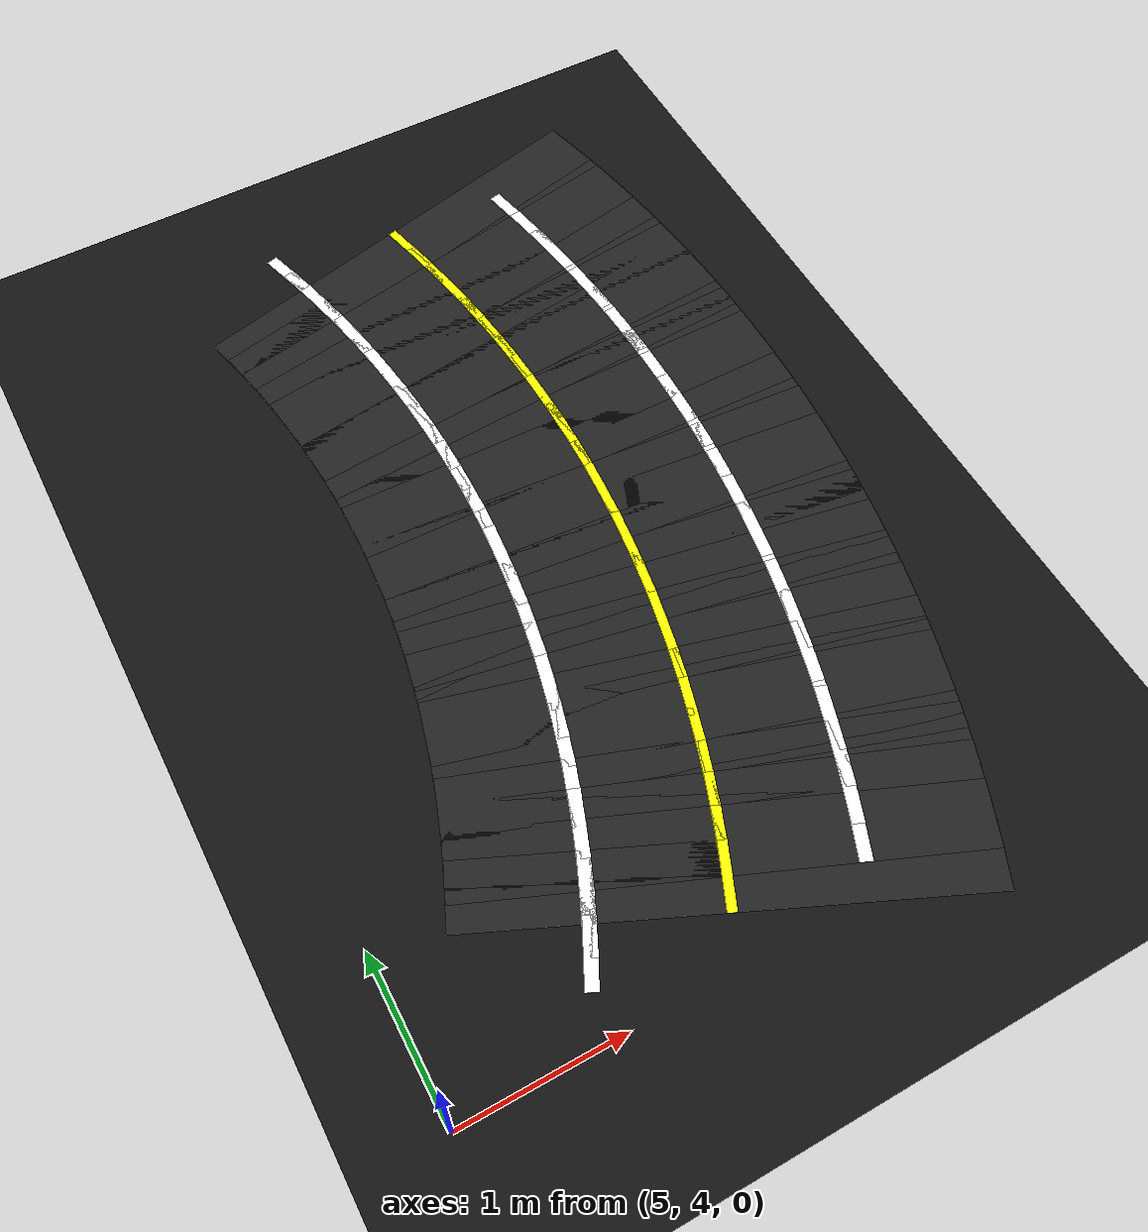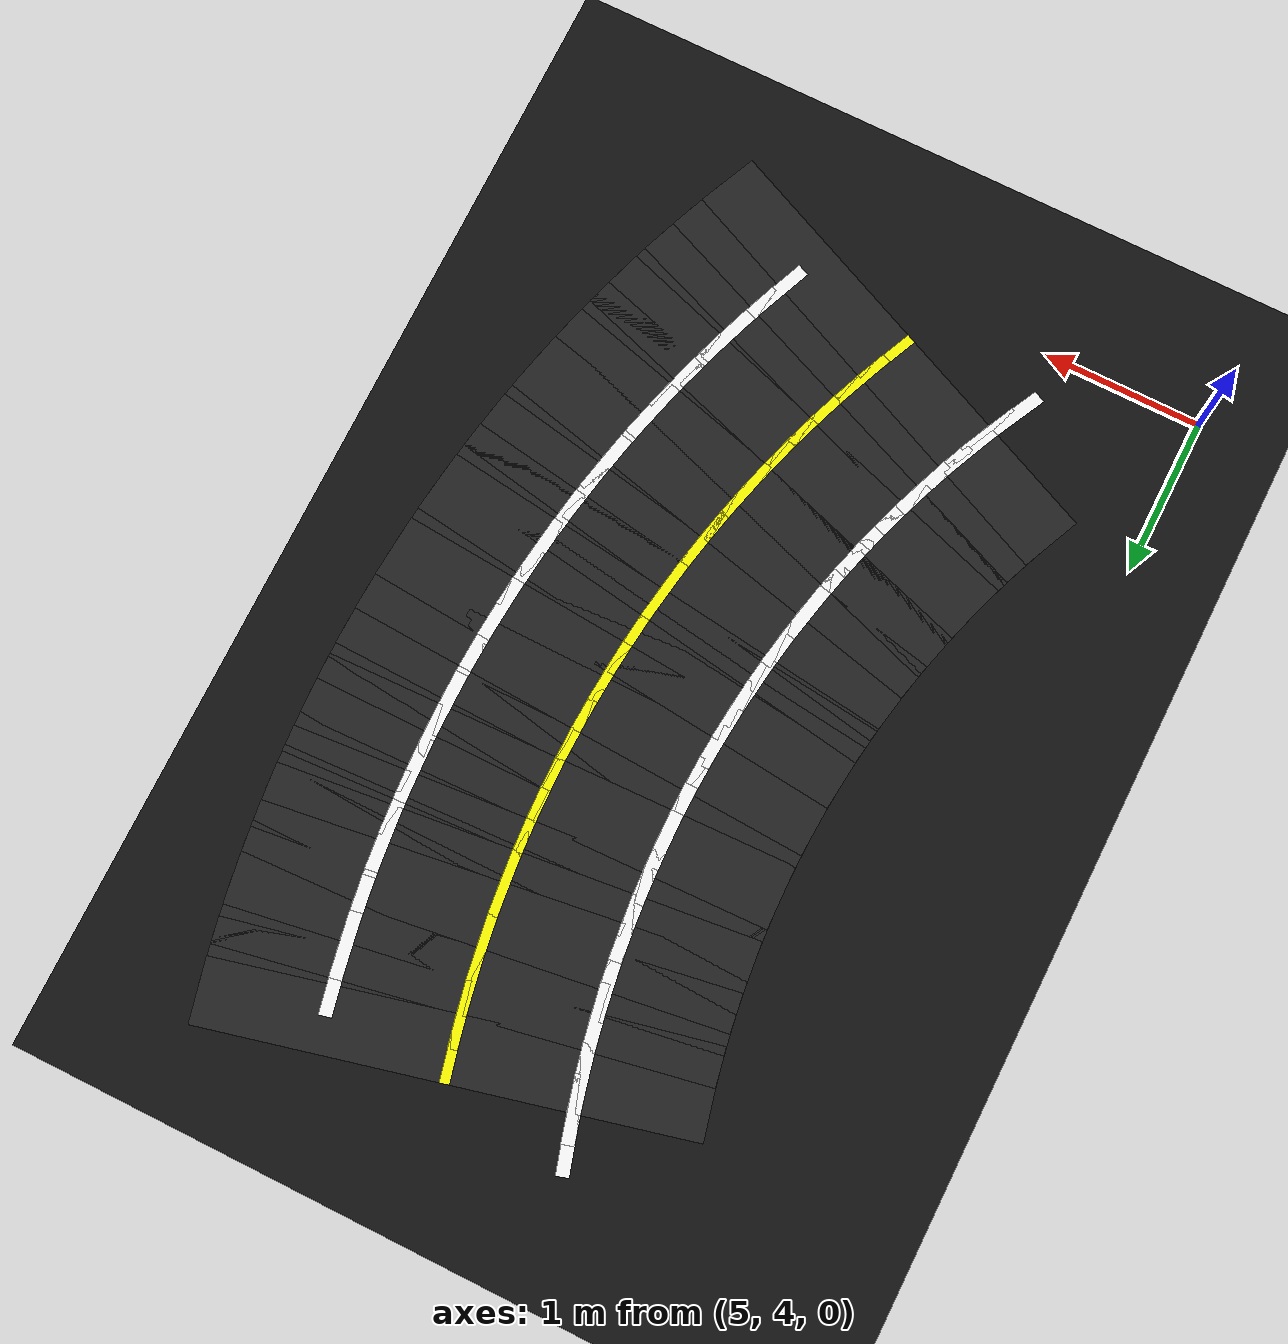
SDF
<sdf version="1.6">
 <world name="figure8_world">
  <model name="ground_plane">
   <static>true</static>
   <link name="link">
    <collision name="collision">
     <geometry><plane><normal>0 0 1</normal><size>120 120</size></plane></geometry>
    </collision>
    <visual name="visual">
     <geometry><plane><normal>0 0 1</normal><size>120 120</size></plane></geometry>
     <material><ambient>0.08 0.08 0.08 1</ambient><diffuse>0.08 0.08 0.08 1</diffuse></material>
    </visual>
   </link>
  </model>
  <model name="seg_00000">
   <static>true</static>
   <pose>7.5000 7.5000 0.0010 0 0 1.5708</pose>
   <link name="link">
    <collision name="collision"><geometry><box><size>0.4000 3.0000 0.002</size></box></geometry></collision>
    <visual name="visual">
     <geometry><box><size>0.4000 3.0000 0.002</size></box></geometry>
     <material><ambient>0.14 0.14 0.14 1</ambient><diffuse>0.14 0.14 0.14 1</diffuse></material>
    </visual>
   </link>
  </model>
  <model name="seg_00001">
   <static>true</static>
   <pose>8.2500 7.5000 0.0030 0 0 1.5708</pose>
   <link name="link">
    <collision name="collision"><geometry><box><size>0.4000 0.0800 0.002</size></box></geometry></collision>
    <visual name="visual">
     <geometry><box><size>0.4000 0.0800 0.002</size></box></geometry>
     <material><ambient>1 1 1 1</ambient><diffuse>1 1 1 1</diffuse></material>
    </visual>
   </link>
  </model>
  <model name="seg_00002">
   <static>true</static>
   <pose>6.7500 7.5000 0.0030 0 0 1.5708</pose>
   <link name="link">
    <collision name="collision"><geometry><box><size>0.4000 0.0800 0.002</size></box></geometry></collision>
    <visual name="visual">
     <geometry><box><size>0.4000 0.0800 0.002</size></box></geometry>
     <material><ambient>1 1 1 1</ambient><diffuse>1 1 1 1</diffuse></material>
    </visual>
   </link>
  </model>
  <model name="seg_00003">
   <static>true</static>
   <pose>7.5000 7.5000 0.0030 0 0 1.5708</pose>
   <link name="link">
    <collision name="collision"><geometry><box><size>0.4000 0.0600 0.002</size></box></geometry></collision>
    <visual name="visual">
     <geometry><box><size>0.4000 0.0600 0.002</size></box></geometry>
     <material><ambient>1 1 0 1</ambient><diffuse>1 1 0 1</diffuse></material>
    </visual>
   </link>
  </model>
  <model name="seg_00004">
   <static>true</static>
   <pose>7.4974 7.6963 0.0010 0 0 1.5970</pose>
   <link name="link">
    <collision name="collision"><geometry><box><size>0.4000 3.0000 0.002</size></box></geometry></collision>
    <visual name="visual">
     <geometry><box><size>0.4000 3.0000 0.002</size></box></geometry>
     <material><ambient>0.14 0.14 0.14 1</ambient><diffuse>0.14 0.14 0.14 1</diffuse></material>
    </visual>
   </link>
  </model>
  <model name="seg_00005">
   <static>true</static>
   <pose>8.2472 7.7160 0.0030 0 0 1.5970</pose>
   <link name="link">
    <collision name="collision"><geometry><box><size>0.4000 0.0800 0.002</size></box></geometry></collision>
    <visual name="visual">
     <geometry><box><size>0.4000 0.0800 0.002</size></box></geometry>
     <material><ambient>1 1 1 1</ambient><diffuse>1 1 1 1</diffuse></material>
    </visual>
   </link>
  </model>
  <model name="seg_00006">
   <static>true</static>
   <pose>6.7477 7.6767 0.0030 0 0 1.5970</pose>
   <link name="link">
    <collision name="collision"><geometry><box><size>0.4000 0.0800 0.002</size></box></geometry></collision>
    <visual name="visual">
     <geometry><box><size>0.4000 0.0800 0.002</size></box></geometry>
     <material><ambient>1 1 1 1</ambient><diffuse>1 1 1 1</diffuse></material>
    </visual>
   </link>
  </model>
  <model name="seg_00007">
   <static>true</static>
   <pose>7.4974 7.6963 0.0030 0 0 1.5970</pose>
   <link name="link">
    <collision name="collision"><geometry><box><size>0.4000 0.0600 0.002</size></box></geometry></collision>
    <visual name="visual">
     <geometry><box><size>0.4000 0.0600 0.002</size></box></geometry>
     <material><ambient>1 1 0 1</ambient><diffuse>1 1 0 1</diffuse></material>
    </visual>
   </link>
  </model>
  <model name="seg_00008">
   <static>true</static>
   <pose>7.4897 7.8925 0.0010 0 0 1.6232</pose>
   <link name="link">
    <collision name="collision"><geometry><box><size>0.4000 3.0000 0.002</size></box></geometry></collision>
    <visual name="visual">
     <geometry><box><size>0.4000 3.0000 0.002</size></box></geometry>
     <material><ambient>0.14 0.14 0.14 1</ambient><diffuse>0.14 0.14 0.14 1</diffuse></material>
    </visual>
   </link>
  </model>
  <model name="seg_00009">
   <static>true</static>
   <pose>8.2387 7.9318 0.0030 0 0 1.6232</pose>
   <link name="link">
    <collision name="collision"><geometry><box><size>0.4000 0.0800 0.002</size></box></geometry></collision>
    <visual name="visual">
     <geometry><box><size>0.4000 0.0800 0.002</size></box></geometry>
     <material><ambient>1 1 1 1</ambient><diffuse>1 1 1 1</diffuse></material>
    </visual>
   </link>
  </model>
  <model name="seg_00010">
   <static>true</static>
   <pose>6.7407 7.8533 0.0030 0 0 1.6232</pose>
   <link name="link">
    <collision name="collision"><geometry><box><size>0.4000 0.0800 0.002</size></box></geometry></collision>
    <visual name="visual">
     <geometry><box><size>0.4000 0.0800 0.002</size></box></geometry>
     <material><ambient>1 1 1 1</ambient><diffuse>1 1 1 1</diffuse></material>
    </visual>
   </link>
  </model>
  <model name="seg_00011">
   <static>true</static>
   <pose>7.4897 7.8925 0.0030 0 0 1.6232</pose>
   <link name="link">
    <collision name="collision"><geometry><box><size>0.4000 0.0600 0.002</size></box></geometry></collision>
    <visual name="visual">
     <geometry><box><size>0.4000 0.0600 0.002</size></box></geometry>
     <material><ambient>1 1 0 1</ambient><diffuse>1 1 0 1</diffuse></material>
    </visual>
   </link>
  </model>
  <model name="seg_00012">
   <static>true</static>
   <pose>7.4769 8.0884 0.0010 0 0 1.6493</pose>
   <link name="link">
    <collision name="collision"><geometry><box><size>0.4000 3.0000 0.002</size></box></geometry></collision>
    <visual name="visual">
     <geometry><box><size>0.4000 3.0000 0.002</size></box></geometry>
     <material><ambient>0.14 0.14 0.14 1</ambient><diffuse>0.14 0.14 0.14 1</diffuse></material>
    </visual>
   </link>
  </model>
  <model name="seg_00013">
   <static>true</static>
   <pose>8.2246 8.1473 0.0030 0 0 1.6493</pose>
   <link name="link">
    <collision name="collision"><geometry><box><size>0.4000 0.0800 0.002</size></box></geometry></collision>
    <visual name="visual">
     <geometry><box><size>0.4000 0.0800 0.002</size></box></geometry>
     <material><ambient>1 1 1 1</ambient><diffuse>1 1 1 1</diffuse></material>
    </visual>
   </link>
  </model>
  <model name="seg_00014">
   <static>true</static>
   <pose>6.7292 8.0296 0.0030 0 0 1.6493</pose>
   <link name="link">
    <collision name="collision"><geometry><box><size>0.4000 0.0800 0.002</size></box></geometry></collision>
    <visual name="visual">
     <geometry><box><size>0.4000 0.0800 0.002</size></box></geometry>
     <material><ambient>1 1 1 1</ambient><diffuse>1 1 1 1</diffuse></material>
    </visual>
   </link>
  </model>
  <model name="seg_00015">
   <static>true</static>
   <pose>7.4769 8.0884 0.0030 0 0 1.6493</pose>
   <link name="link">
    <collision name="collision"><geometry><box><size>0.4000 0.0600 0.002</size></box></geometry></collision>
    <visual name="visual">
     <geometry><box><size>0.4000 0.0600 0.002</size></box></geometry>
     <material><ambient>1 1 0 1</ambient><diffuse>1 1 0 1</diffuse></material>
    </visual>
   </link>
  </model>
  <model name="seg_00016">
   <static>true</static>
   <pose>7.4589 8.2840 0.0010 0 0 1.6755</pose>
   <link name="link">
    <collision name="collision"><geometry><box><size>0.4000 3.0000 0.002</size></box></geometry></collision>
    <visual name="visual">
     <geometry><box><size>0.4000 3.0000 0.002</size></box></geometry>
     <material><ambient>0.14 0.14 0.14 1</ambient><diffuse>0.14 0.14 0.14 1</diffuse></material>
    </visual>
   </link>
  </model>
  <model name="seg_00017">
   <static>true</static>
   <pose>8.2048 8.3624 0.0030 0 0 1.6755</pose>
   <link name="link">
    <collision name="collision"><geometry><box><size>0.4000 0.0800 0.002</size></box></geometry></collision>
    <visual name="visual">
     <geometry><box><size>0.4000 0.0800 0.002</size></box></geometry>
     <material><ambient>1 1 1 1</ambient><diffuse>1 1 1 1</diffuse></material>
    </visual>
   </link>
  </model>
  <model name="seg_00018">
   <static>true</static>
   <pose>6.7130 8.2056 0.0030 0 0 1.6755</pose>
   <link name="link">
    <collision name="collision"><geometry><box><size>0.4000 0.0800 0.002</size></box></geometry></collision>
    <visual name="visual">
     <geometry><box><size>0.4000 0.0800 0.002</size></box></geometry>
     <material><ambient>1 1 1 1</ambient><diffuse>1 1 1 1</diffuse></material>
    </visual>
   </link>
  </model>
  <model name="seg_00019">
   <static>true</static>
   <pose>7.4589 8.2840 0.0030 0 0 1.6755</pose>
   <link name="link">
    <collision name="collision"><geometry><box><size>0.4000 0.0600 0.002</size></box></geometry></collision>
    <visual name="visual">
     <geometry><box><size>0.4000 0.0600 0.002</size></box></geometry>
     <material><ambient>1 1 0 1</ambient><diffuse>1 1 0 1</diffuse></material>
    </visual>
   </link>
  </model>
  <model name="seg_00020">
   <static>true</static>
   <pose>7.4358 8.4789 0.0010 0 0 1.7017</pose>
   <link name="link">
    <collision name="collision"><geometry><box><size>0.4000 3.0000 0.002</size></box></geometry></collision>
    <visual name="visual">
     <geometry><box><size>0.4000 3.0000 0.002</size></box></geometry>
     <material><ambient>0.14 0.14 0.14 1</ambient><diffuse>0.14 0.14 0.14 1</diffuse></material>
    </visual>
   </link>
  </model>
  <model name="seg_00021">
   <static>true</static>
   <pose>8.1794 8.5768 0.0030 0 0 1.7017</pose>
   <link name="link">
    <collision name="collision"><geometry><box><size>0.4000 0.0800 0.002</size></box></geometry></collision>
    <visual name="visual">
     <geometry><box><size>0.4000 0.0800 0.002</size></box></geometry>
     <material><ambient>1 1 1 1</ambient><diffuse>1 1 1 1</diffuse></material>
    </visual>
   </link>
  </model>
  <model name="seg_00022">
   <static>true</static>
   <pose>6.6923 8.3811 0.0030 0 0 1.7017</pose>
   <link name="link">
    <collision name="collision"><geometry><box><size>0.4000 0.0800 0.002</size></box></geometry></collision>
    <visual name="visual">
     <geometry><box><size>0.4000 0.0800 0.002</size></box></geometry>
     <material><ambient>1 1 1 1</ambient><diffuse>1 1 1 1</diffuse></material>
    </visual>
   </link>
  </model>
  <model name="seg_00023">
   <static>true</static>
   <pose>7.4358 8.4789 0.0030 0 0 1.7017</pose>
   <link name="link">
    <collision name="collision"><geometry><box><size>0.4000 0.0600 0.002</size></box></geometry></collision>
    <visual name="visual">
     <geometry><box><size>0.4000 0.0600 0.002</size></box></geometry>
     <material><ambient>1 1 0 1</ambient><diffuse>1 1 0 1</diffuse></material>
    </visual>
   </link>
  </model>
  <model name="seg_00024">
   <static>true</static>
   <pose>7.4077 8.6733 0.0010 0 0 1.7279</pose>
   <link name="link">
    <collision name="collision"><geometry><box><size>0.4000 3.0000 0.002</size></box></geometry></collision>
    <visual name="visual">
     <geometry><box><size>0.4000 3.0000 0.002</size></box></geometry>
     <material><ambient>0.14 0.14 0.14 1</ambient><diffuse>0.14 0.14 0.14 1</diffuse></material>
    </visual>
   </link>
  </model>
  <model name="seg_00025">
   <static>true</static>
   <pose>8.1484 8.7906 0.0030 0 0 1.7279</pose>
   <link name="link">
    <collision name="collision"><geometry><box><size>0.4000 0.0800 0.002</size></box></geometry></collision>
    <visual name="visual">
     <geometry><box><size>0.4000 0.0800 0.002</size></box></geometry>
     <material><ambient>1 1 1 1</ambient><diffuse>1 1 1 1</diffuse></material>
    </visual>
   </link>
  </model>
  <model name="seg_00026">
   <static>true</static>
   <pose>6.6669 8.5559 0.0030 0 0 1.7279</pose>
   <link name="link">
    <collision name="collision"><geometry><box><size>0.4000 0.0800 0.002</size></box></geometry></collision>
    <visual name="visual">
     <geometry><box><size>0.4000 0.0800 0.002</size></box></geometry>
     <material><ambient>1 1 1 1</ambient><diffuse>1 1 1 1</diffuse></material>
    </visual>
   </link>
  </model>
  <model name="seg_00027">
   <static>true</static>
   <pose>7.4077 8.6733 0.0030 0 0 1.7279</pose>
   <link name="link">
    <collision name="collision"><geometry><box><size>0.4000 0.0600 0.002</size></box></geometry></collision>
    <visual name="visual">
     <geometry><box><size>0.4000 0.0600 0.002</size></box></geometry>
     <material><ambient>1 1 0 1</ambient><diffuse>1 1 0 1</diffuse></material>
    </visual>
   </link>
  </model>
  <model name="seg_00028">
   <static>true</static>
   <pose>7.3744 8.8668 0.0010 0 0 1.7541</pose>
   <link name="link">
    <collision name="collision"><geometry><box><size>0.4000 3.0000 0.002</size></box></geometry></collision>
    <visual name="visual">
     <geometry><box><size>0.4000 3.0000 0.002</size></box></geometry>
     <material><ambient>0.14 0.14 0.14 1</ambient><diffuse>0.14 0.14 0.14 1</diffuse></material>
    </visual>
   </link>
  </model>
  <model name="seg_00029">
   <static>true</static>
   <pose>8.1119 9.0034 0.0030 0 0 1.7541</pose>
   <link name="link">
    <collision name="collision"><geometry><box><size>0.4000 0.0800 0.002</size></box></geometry></collision>
    <visual name="visual">
     <geometry><box><size>0.4000 0.0800 0.002</size></box></geometry>
     <material><ambient>1 1 1 1</ambient><diffuse>1 1 1 1</diffuse></material>
    </visual>
   </link>
  </model>
  <model name="seg_00030">
   <static>true</static>
   <pose>6.6370 8.7301 0.0030 0 0 1.7541</pose>
   <link name="link">
    <collision name="collision"><geometry><box><size>0.4000 0.0800 0.002</size></box></geometry></collision>
    <visual name="visual">
     <geometry><box><size>0.4000 0.0800 0.002</size></box></geometry>
     <material><ambient>1 1 1 1</ambient><diffuse>1 1 1 1</diffuse></material>
    </visual>
   </link>
  </model>
  <model name="seg_00031">
   <static>true</static>
   <pose>7.3744 8.8668 0.0030 0 0 1.7541</pose>
   <link name="link">
    <collision name="collision"><geometry><box><size>0.4000 0.0600 0.002</size></box></geometry></collision>
    <visual name="visual">
     <geometry><box><size>0.4000 0.0600 0.002</size></box></geometry>
     <material><ambient>1 1 0 1</ambient><diffuse>1 1 0 1</diffuse></material>
    </visual>
   </link>
  </model>
  <model name="seg_00032">
   <static>true</static>
   <pose>7.3361 9.0593 0.0010 0 0 1.7802</pose>
   <link name="link">
    <collision name="collision"><geometry><box><size>0.4000 3.0000 0.002</size></box></geometry></collision>
    <visual name="visual">
     <geometry><box><size>0.4000 3.0000 0.002</size></box></geometry>
     <material><ambient>0.14 0.14 0.14 1</ambient><diffuse>0.14 0.14 0.14 1</diffuse></material>
    </visual>
   </link>
  </model>
  <model name="seg_00033">
   <static>true</static>
   <pose>8.0697 9.2153 0.0030 0 0 1.7802</pose>
   <link name="link">
    <collision name="collision"><geometry><box><size>0.4000 0.0800 0.002</size></box></geometry></collision>
    <visual name="visual">
     <geometry><box><size>0.4000 0.0800 0.002</size></box></geometry>
     <material><ambient>1 1 1 1</ambient><diffuse>1 1 1 1</diffuse></material>
    </visual>
   </link>
  </model>
  <model name="seg_00034">
   <static>true</static>
   <pose>6.6025 8.9034 0.0030 0 0 1.7802</pose>
   <link name="link">
    <collision name="collision"><geometry><box><size>0.4000 0.0800 0.002</size></box></geometry></collision>
    <visual name="visual">
     <geometry><box><size>0.4000 0.0800 0.002</size></box></geometry>
     <material><ambient>1 1 1 1</ambient><diffuse>1 1 1 1</diffuse></material>
    </visual>
   </link>
  </model>
  <model name="seg_00035">
   <static>true</static>
   <pose>7.3361 9.0593 0.0030 0 0 1.7802</pose>
   <link name="link">
    <collision name="collision"><geometry><box><size>0.4000 0.0600 0.002</size></box></geometry></collision>
    <visual name="visual">
     <geometry><box><size>0.4000 0.0600 0.002</size></box></geometry>
     <material><ambient>1 1 0 1</ambient><diffuse>1 1 0 1</diffuse></material>
    </visual>
   </link>
  </model>
  <model name="seg_00036">
   <static>true</static>
   <pose>7.2928 9.2508 0.0010 0 0 1.8064</pose>
   <link name="link">
    <collision name="collision"><geometry><box><size>0.4000 3.0000 0.002</size></box></geometry></collision>
    <visual name="visual">
     <geometry><box><size>0.4000 3.0000 0.002</size></box></geometry>
     <material><ambient>0.14 0.14 0.14 1</ambient><diffuse>0.14 0.14 0.14 1</diffuse></material>
    </visual>
   </link>
  </model>
  <model name="seg_00038">
   <static>true</static>
   <pose>6.5635 9.0758 0.0030 0 0 1.8064</pose>
   <link name="link">
    <collision name="collision"><geometry><box><size>0.4000 0.0800 0.002</size></box></geometry></collision>
    <visual name="visual">
     <geometry><box><size>0.4000 0.0800 0.002</size></box></geometry>
     <material><ambient>1 1 1 1</ambient><diffuse>1 1 1 1</diffuse></material>
    </visual>
   </link>
  </model>
  <model name="seg_00039">
   <static>true</static>
   <pose>7.2928 9.2508 0.0030 0 0 1.8064</pose>
   <link name="link">
    <collision name="collision"><geometry><box><size>0.4000 0.0600 0.002</size></box></geometry></collision>
    <visual name="visual">
     <geometry><box><size>0.4000 0.0600 0.002</size></box></geometry>
     <material><ambient>1 1 0 1</ambient><diffuse>1 1 0 1</diffuse></material>
    </visual>
   </link>
  </model>
  <model name="seg_00042">
   <static>true</static>
   <pose>6.5200 9.2470 0.0030 0 0 1.8326</pose>
   <link name="link">
    <collision name="collision"><geometry><box><size>0.4000 0.0800 0.002</size></box></geometry></collision>
    <visual name="visual">
     <geometry><box><size>0.4000 0.0800 0.002</size></box></geometry>
     <material><ambient>1 1 1 1</ambient><diffuse>1 1 1 1</diffuse></material>
    </visual>
   </link>
  </model>
  <model name="seg_00046">
   <static>true</static>
   <pose>6.4720 9.4171 0.0030 0 0 1.8588</pose>
   <link name="link">
    <collision name="collision"><geometry><box><size>0.4000 0.0800 0.002</size></box></geometry></collision>
    <visual name="visual">
     <geometry><box><size>0.4000 0.0800 0.002</size></box></geometry>
     <material><ambient>1 1 1 1</ambient><diffuse>1 1 1 1</diffuse></material>
    </visual>
   </link>
  </model>
  <model name="seg_00686">
   <static>true</static>
   <pose>6.0143 4.4356 0.0030 0 0 7.3827</pose>
   <link name="link">
    <collision name="collision"><geometry><box><size>0.4000 0.0800 0.002</size></box></geometry></collision>
    <visual name="visual">
     <geometry><box><size>0.4000 0.0800 0.002</size></box></geometry>
     <material><ambient>1 1 1 1</ambient><diffuse>1 1 1 1</diffuse></material>
    </visual>
   </link>
  </model>
  <model name="seg_00690">
   <static>true</static>
   <pose>6.0925 4.5941 0.0030 0 0 7.4089</pose>
   <link name="link">
    <collision name="collision"><geometry><box><size>0.4000 0.0800 0.002</size></box></geometry></collision>
    <visual name="visual">
     <geometry><box><size>0.4000 0.0800 0.002</size></box></geometry>
     <material><ambient>1 1 1 1</ambient><diffuse>1 1 1 1</diffuse></material>
    </visual>
   </link>
  </model>
  <model name="seg_00692">
   <static>true</static>
   <pose>6.8516 4.4495 0.0010 0 0 7.4351</pose>
   <link name="link">
    <collision name="collision"><geometry><box><size>0.4000 3.0000 0.002</size></box></geometry></collision>
    <visual name="visual">
     <geometry><box><size>0.4000 3.0000 0.002</size></box></geometry>
     <material><ambient>0.14 0.14 0.14 1</ambient><diffuse>0.14 0.14 0.14 1</diffuse></material>
    </visual>
   </link>
  </model>
  <model name="seg_00694">
   <static>true</static>
   <pose>6.1664 4.7545 0.0030 0 0 7.4351</pose>
   <link name="link">
    <collision name="collision"><geometry><box><size>0.4000 0.0800 0.002</size></box></geometry></collision>
    <visual name="visual">
     <geometry><box><size>0.4000 0.0800 0.002</size></box></geometry>
     <material><ambient>1 1 1 1</ambient><diffuse>1 1 1 1</diffuse></material>
    </visual>
   </link>
  </model>
  <model name="seg_00695">
   <static>true</static>
   <pose>6.8516 4.4495 0.0030 0 0 7.4351</pose>
   <link name="link">
    <collision name="collision"><geometry><box><size>0.4000 0.0600 0.002</size></box></geometry></collision>
    <visual name="visual">
     <geometry><box><size>0.4000 0.0600 0.002</size></box></geometry>
     <material><ambient>1 1 0 1</ambient><diffuse>1 1 0 1</diffuse></material>
    </visual>
   </link>
  </model>
  <model name="seg_00696">
   <static>true</static>
   <pose>6.9291 4.6299 0.0010 0 0 7.4613</pose>
   <link name="link">
    <collision name="collision"><geometry><box><size>0.4000 3.0000 0.002</size></box></geometry></collision>
    <visual name="visual">
     <geometry><box><size>0.4000 3.0000 0.002</size></box></geometry>
     <material><ambient>0.14 0.14 0.14 1</ambient><diffuse>0.14 0.14 0.14 1</diffuse></material>
    </visual>
   </link>
  </model>
  <model name="seg_00697">
   <static>true</static>
   <pose>7.6220 4.3429 0.0030 0 0 7.4613</pose>
   <link name="link">
    <collision name="collision"><geometry><box><size>0.4000 0.0800 0.002</size></box></geometry></collision>
    <visual name="visual">
     <geometry><box><size>0.4000 0.0800 0.002</size></box></geometry>
     <material><ambient>1 1 1 1</ambient><diffuse>1 1 1 1</diffuse></material>
    </visual>
   </link>
  </model>
  <model name="seg_00698">
   <static>true</static>
   <pose>6.2362 4.9169 0.0030 0 0 7.4613</pose>
   <link name="link">
    <collision name="collision"><geometry><box><size>0.4000 0.0800 0.002</size></box></geometry></collision>
    <visual name="visual">
     <geometry><box><size>0.4000 0.0800 0.002</size></box></geometry>
     <material><ambient>1 1 1 1</ambient><diffuse>1 1 1 1</diffuse></material>
    </visual>
   </link>
  </model>
  <model name="seg_00699">
   <static>true</static>
   <pose>6.9291 4.6299 0.0030 0 0 7.4613</pose>
   <link name="link">
    <collision name="collision"><geometry><box><size>0.4000 0.0600 0.002</size></box></geometry></collision>
    <visual name="visual">
     <geometry><box><size>0.4000 0.0600 0.002</size></box></geometry>
     <material><ambient>1 1 0 1</ambient><diffuse>1 1 0 1</diffuse></material>
    </visual>
   </link>
  </model>
  <model name="seg_00700">
   <static>true</static>
   <pose>7.0019 4.8122 0.0010 0 0 7.4875</pose>
   <link name="link">
    <collision name="collision"><geometry><box><size>0.4000 3.0000 0.002</size></box></geometry></collision>
    <visual name="visual">
     <geometry><box><size>0.4000 3.0000 0.002</size></box></geometry>
     <material><ambient>0.14 0.14 0.14 1</ambient><diffuse>0.14 0.14 0.14 1</diffuse></material>
    </visual>
   </link>
  </model>
  <model name="seg_00701">
   <static>true</static>
   <pose>7.7020 4.5435 0.0030 0 0 7.4875</pose>
   <link name="link">
    <collision name="collision"><geometry><box><size>0.4000 0.0800 0.002</size></box></geometry></collision>
    <visual name="visual">
     <geometry><box><size>0.4000 0.0800 0.002</size></box></geometry>
     <material><ambient>1 1 1 1</ambient><diffuse>1 1 1 1</diffuse></material>
    </visual>
   </link>
  </model>
  <model name="seg_00702">
   <static>true</static>
   <pose>6.3017 5.0810 0.0030 0 0 7.4875</pose>
   <link name="link">
    <collision name="collision"><geometry><box><size>0.4000 0.0800 0.002</size></box></geometry></collision>
    <visual name="visual">
     <geometry><box><size>0.4000 0.0800 0.002</size></box></geometry>
     <material><ambient>1 1 1 1</ambient><diffuse>1 1 1 1</diffuse></material>
    </visual>
   </link>
  </model>
  <model name="seg_00703">
   <static>true</static>
   <pose>7.0019 4.8122 0.0030 0 0 7.4875</pose>
   <link name="link">
    <collision name="collision"><geometry><box><size>0.4000 0.0600 0.002</size></box></geometry></collision>
    <visual name="visual">
     <geometry><box><size>0.4000 0.0600 0.002</size></box></geometry>
     <material><ambient>1 1 0 1</ambient><diffuse>1 1 0 1</diffuse></material>
    </visual>
   </link>
  </model>
  <model name="seg_00704">
   <static>true</static>
   <pose>7.0698 4.9964 0.0010 0 0 7.5136</pose>
   <link name="link">
    <collision name="collision"><geometry><box><size>0.4000 3.0000 0.002</size></box></geometry></collision>
    <visual name="visual">
     <geometry><box><size>0.4000 3.0000 0.002</size></box></geometry>
     <material><ambient>0.14 0.14 0.14 1</ambient><diffuse>0.14 0.14 0.14 1</diffuse></material>
    </visual>
   </link>
  </model>
  <model name="seg_00705">
   <static>true</static>
   <pose>7.7768 4.7461 0.0030 0 0 7.5136</pose>
   <link name="link">
    <collision name="collision"><geometry><box><size>0.4000 0.0800 0.002</size></box></geometry></collision>
    <visual name="visual">
     <geometry><box><size>0.4000 0.0800 0.002</size></box></geometry>
     <material><ambient>1 1 1 1</ambient><diffuse>1 1 1 1</diffuse></material>
    </visual>
   </link>
  </model>
  <model name="seg_00706">
   <static>true</static>
   <pose>6.3628 5.2468 0.0030 0 0 7.5136</pose>
   <link name="link">
    <collision name="collision"><geometry><box><size>0.4000 0.0800 0.002</size></box></geometry></collision>
    <visual name="visual">
     <geometry><box><size>0.4000 0.0800 0.002</size></box></geometry>
     <material><ambient>1 1 1 1</ambient><diffuse>1 1 1 1</diffuse></material>
    </visual>
   </link>
  </model>
  <model name="seg_00707">
   <static>true</static>
   <pose>7.0698 4.9964 0.0030 0 0 7.5136</pose>
   <link name="link">
    <collision name="collision"><geometry><box><size>0.4000 0.0600 0.002</size></box></geometry></collision>
    <visual name="visual">
     <geometry><box><size>0.4000 0.0600 0.002</size></box></geometry>
     <material><ambient>1 1 0 1</ambient><diffuse>1 1 0 1</diffuse></material>
    </visual>
   </link>
  </model>
  <model name="seg_00708">
   <static>true</static>
   <pose>7.1329 5.1824 0.0010 0 0 7.5398</pose>
   <link name="link">
    <collision name="collision"><geometry><box><size>0.4000 3.0000 0.002</size></box></geometry></collision>
    <visual name="visual">
     <geometry><box><size>0.4000 3.0000 0.002</size></box></geometry>
     <material><ambient>0.14 0.14 0.14 1</ambient><diffuse>0.14 0.14 0.14 1</diffuse></material>
    </visual>
   </link>
  </model>
  <model name="seg_00709">
   <static>true</static>
   <pose>7.8462 4.9506 0.0030 0 0 7.5398</pose>
   <link name="link">
    <collision name="collision"><geometry><box><size>0.4000 0.0800 0.002</size></box></geometry></collision>
    <visual name="visual">
     <geometry><box><size>0.4000 0.0800 0.002</size></box></geometry>
     <material><ambient>1 1 1 1</ambient><diffuse>1 1 1 1</diffuse></material>
    </visual>
   </link>
  </model>
  <model name="seg_00710">
   <static>true</static>
   <pose>6.4196 5.4141 0.0030 0 0 7.5398</pose>
   <link name="link">
    <collision name="collision"><geometry><box><size>0.4000 0.0800 0.002</size></box></geometry></collision>
    <visual name="visual">
     <geometry><box><size>0.4000 0.0800 0.002</size></box></geometry>
     <material><ambient>1 1 1 1</ambient><diffuse>1 1 1 1</diffuse></material>
    </visual>
   </link>
  </model>
  <model name="seg_00711">
   <static>true</static>
   <pose>7.1329 5.1824 0.0030 0 0 7.5398</pose>
   <link name="link">
    <collision name="collision"><geometry><box><size>0.4000 0.0600 0.002</size></box></geometry></collision>
    <visual name="visual">
     <geometry><box><size>0.4000 0.0600 0.002</size></box></geometry>
     <material><ambient>1 1 0 1</ambient><diffuse>1 1 0 1</diffuse></material>
    </visual>
   </link>
  </model>
  <model name="seg_00712">
   <static>true</static>
   <pose>7.1911 5.3699 0.0010 0 0 7.5660</pose>
   <link name="link">
    <collision name="collision"><geometry><box><size>0.4000 3.0000 0.002</size></box></geometry></collision>
    <visual name="visual">
     <geometry><box><size>0.4000 3.0000 0.002</size></box></geometry>
     <material><ambient>0.14 0.14 0.14 1</ambient><diffuse>0.14 0.14 0.14 1</diffuse></material>
    </visual>
   </link>
  </model>
  <model name="seg_00713">
   <static>true</static>
   <pose>7.9103 5.1569 0.0030 0 0 7.5660</pose>
   <link name="link">
    <collision name="collision"><geometry><box><size>0.4000 0.0800 0.002</size></box></geometry></collision>
    <visual name="visual">
     <geometry><box><size>0.4000 0.0800 0.002</size></box></geometry>
     <material><ambient>1 1 1 1</ambient><diffuse>1 1 1 1</diffuse></material>
    </visual>
   </link>
  </model>
  <model name="seg_00714">
   <static>true</static>
   <pose>6.4720 5.5829 0.0030 0 0 7.5660</pose>
   <link name="link">
    <collision name="collision"><geometry><box><size>0.4000 0.0800 0.002</size></box></geometry></collision>
    <visual name="visual">
     <geometry><box><size>0.4000 0.0800 0.002</size></box></geometry>
     <material><ambient>1 1 1 1</ambient><diffuse>1 1 1 1</diffuse></material>
    </visual>
   </link>
  </model>
  <model name="seg_00715">
   <static>true</static>
   <pose>7.1911 5.3699 0.0030 0 0 7.5660</pose>
   <link name="link">
    <collision name="collision"><geometry><box><size>0.4000 0.0600 0.002</size></box></geometry></collision>
    <visual name="visual">
     <geometry><box><size>0.4000 0.0600 0.002</size></box></geometry>
     <material><ambient>1 1 0 1</ambient><diffuse>1 1 0 1</diffuse></material>
    </visual>
   </link>
  </model>
  <model name="seg_00716">
   <static>true</static>
   <pose>7.2444 5.5589 0.0010 0 0 7.5922</pose>
   <link name="link">
    <collision name="collision"><geometry><box><size>0.4000 3.0000 0.002</size></box></geometry></collision>
    <visual name="visual">
     <geometry><box><size>0.4000 3.0000 0.002</size></box></geometry>
     <material><ambient>0.14 0.14 0.14 1</ambient><diffuse>0.14 0.14 0.14 1</diffuse></material>
    </visual>
   </link>
  </model>
  <model name="seg_00717">
   <static>true</static>
   <pose>7.9689 5.3647 0.0030 0 0 7.5922</pose>
   <link name="link">
    <collision name="collision"><geometry><box><size>0.4000 0.0800 0.002</size></box></geometry></collision>
    <visual name="visual">
     <geometry><box><size>0.4000 0.0800 0.002</size></box></geometry>
     <material><ambient>1 1 1 1</ambient><diffuse>1 1 1 1</diffuse></material>
    </visual>
   </link>
  </model>
  <model name="seg_00718">
   <static>true</static>
   <pose>6.5200 5.7530 0.0030 0 0 7.5922</pose>
   <link name="link">
    <collision name="collision"><geometry><box><size>0.4000 0.0800 0.002</size></box></geometry></collision>
    <visual name="visual">
     <geometry><box><size>0.4000 0.0800 0.002</size></box></geometry>
     <material><ambient>1 1 1 1</ambient><diffuse>1 1 1 1</diffuse></material>
    </visual>
   </link>
  </model>
  <model name="seg_00719">
   <static>true</static>
   <pose>7.2444 5.5589 0.0030 0 0 7.5922</pose>
   <link name="link">
    <collision name="collision"><geometry><box><size>0.4000 0.0600 0.002</size></box></geometry></collision>
    <visual name="visual">
     <geometry><box><size>0.4000 0.0600 0.002</size></box></geometry>
     <material><ambient>1 1 0 1</ambient><diffuse>1 1 0 1</diffuse></material>
    </visual>
   </link>
  </model>
  <model name="seg_00720">
   <static>true</static>
   <pose>7.2928 5.7492 0.0010 0 0 7.6184</pose>
   <link name="link">
    <collision name="collision"><geometry><box><size>0.4000 3.0000 0.002</size></box></geometry></collision>
    <visual name="visual">
     <geometry><box><size>0.4000 3.0000 0.002</size></box></geometry>
     <material><ambient>0.14 0.14 0.14 1</ambient><diffuse>0.14 0.14 0.14 1</diffuse></material>
    </visual>
   </link>
  </model>
  <model name="seg_00721">
   <static>true</static>
   <pose>8.0221 5.5741 0.0030 0 0 7.6184</pose>
   <link name="link">
    <collision name="collision"><geometry><box><size>0.4000 0.0800 0.002</size></box></geometry></collision>
    <visual name="visual">
     <geometry><box><size>0.4000 0.0800 0.002</size></box></geometry>
     <material><ambient>1 1 1 1</ambient><diffuse>1 1 1 1</diffuse></material>
    </visual>
   </link>
  </model>
  <model name="seg_00722">
   <static>true</static>
   <pose>6.5635 5.9242 0.0030 0 0 7.6184</pose>
   <link name="link">
    <collision name="collision"><geometry><box><size>0.4000 0.0800 0.002</size></box></geometry></collision>
    <visual name="visual">
     <geometry><box><size>0.4000 0.0800 0.002</size></box></geometry>
     <material><ambient>1 1 1 1</ambient><diffuse>1 1 1 1</diffuse></material>
    </visual>
   </link>
  </model>
  <model name="seg_00723">
   <static>true</static>
   <pose>7.2928 5.7492 0.0030 0 0 7.6184</pose>
   <link name="link">
    <collision name="collision"><geometry><box><size>0.4000 0.0600 0.002</size></box></geometry></collision>
    <visual name="visual">
     <geometry><box><size>0.4000 0.0600 0.002</size></box></geometry>
     <material><ambient>1 1 0 1</ambient><diffuse>1 1 0 1</diffuse></material>
    </visual>
   </link>
  </model>
  <model name="seg_00724">
   <static>true</static>
   <pose>7.3361 5.9407 0.0010 0 0 7.6445</pose>
   <link name="link">
    <collision name="collision"><geometry><box><size>0.4000 3.0000 0.002</size></box></geometry></collision>
    <visual name="visual">
     <geometry><box><size>0.4000 3.0000 0.002</size></box></geometry>
     <material><ambient>0.14 0.14 0.14 1</ambient><diffuse>0.14 0.14 0.14 1</diffuse></material>
    </visual>
   </link>
  </model>
  <model name="seg_00725">
   <static>true</static>
   <pose>8.0697 5.7847 0.0030 0 0 7.6445</pose>
   <link name="link">
    <collision name="collision"><geometry><box><size>0.4000 0.0800 0.002</size></box></geometry></collision>
    <visual name="visual">
     <geometry><box><size>0.4000 0.0800 0.002</size></box></geometry>
     <material><ambient>1 1 1 1</ambient><diffuse>1 1 1 1</diffuse></material>
    </visual>
   </link>
  </model>
  <model name="seg_00726">
   <static>true</static>
   <pose>6.6025 6.0966 0.0030 0 0 7.6445</pose>
   <link name="link">
    <collision name="collision"><geometry><box><size>0.4000 0.0800 0.002</size></box></geometry></collision>
    <visual name="visual">
     <geometry><box><size>0.4000 0.0800 0.002</size></box></geometry>
     <material><ambient>1 1 1 1</ambient><diffuse>1 1 1 1</diffuse></material>
    </visual>
   </link>
  </model>
  <model name="seg_00727">
   <static>true</static>
   <pose>7.3361 5.9407 0.0030 0 0 7.6445</pose>
   <link name="link">
    <collision name="collision"><geometry><box><size>0.4000 0.0600 0.002</size></box></geometry></collision>
    <visual name="visual">
     <geometry><box><size>0.4000 0.0600 0.002</size></box></geometry>
     <material><ambient>1 1 0 1</ambient><diffuse>1 1 0 1</diffuse></material>
    </visual>
   </link>
  </model>
  <model name="seg_00728">
   <static>true</static>
   <pose>7.3744 6.1332 0.0010 0 0 7.6707</pose>
   <link name="link">
    <collision name="collision"><geometry><box><size>0.4000 3.0000 0.002</size></box></geometry></collision>
    <visual name="visual">
     <geometry><box><size>0.4000 3.0000 0.002</size></box></geometry>
     <material><ambient>0.14 0.14 0.14 1</ambient><diffuse>0.14 0.14 0.14 1</diffuse></material>
    </visual>
   </link>
  </model>
  <model name="seg_00729">
   <static>true</static>
   <pose>8.1119 5.9966 0.0030 0 0 7.6707</pose>
   <link name="link">
    <collision name="collision"><geometry><box><size>0.4000 0.0800 0.002</size></box></geometry></collision>
    <visual name="visual">
     <geometry><box><size>0.4000 0.0800 0.002</size></box></geometry>
     <material><ambient>1 1 1 1</ambient><diffuse>1 1 1 1</diffuse></material>
    </visual>
   </link>
  </model>
  <model name="seg_00730">
   <static>true</static>
   <pose>6.6370 6.2699 0.0030 0 0 7.6707</pose>
   <link name="link">
    <collision name="collision"><geometry><box><size>0.4000 0.0800 0.002</size></box></geometry></collision>
    <visual name="visual">
     <geometry><box><size>0.4000 0.0800 0.002</size></box></geometry>
     <material><ambient>1 1 1 1</ambient><diffuse>1 1 1 1</diffuse></material>
    </visual>
   </link>
  </model>
  <model name="seg_00731">
   <static>true</static>
   <pose>7.3744 6.1332 0.0030 0 0 7.6707</pose>
   <link name="link">
    <collision name="collision"><geometry><box><size>0.4000 0.0600 0.002</size></box></geometry></collision>
    <visual name="visual">
     <geometry><box><size>0.4000 0.0600 0.002</size></box></geometry>
     <material><ambient>1 1 0 1</ambient><diffuse>1 1 0 1</diffuse></material>
    </visual>
   </link>
  </model>
  <model name="seg_00732">
   <static>true</static>
   <pose>7.4077 6.3267 0.0010 0 0 7.6969</pose>
   <link name="link">
    <collision name="collision"><geometry><box><size>0.4000 3.0000 0.002</size></box></geometry></collision>
    <visual name="visual">
     <geometry><box><size>0.4000 3.0000 0.002</size></box></geometry>
     <material><ambient>0.14 0.14 0.14 1</ambient><diffuse>0.14 0.14 0.14 1</diffuse></material>
    </visual>
   </link>
  </model>
  <model name="seg_00733">
   <static>true</static>
   <pose>8.1484 6.2094 0.0030 0 0 7.6969</pose>
   <link name="link">
    <collision name="collision"><geometry><box><size>0.4000 0.0800 0.002</size></box></geometry></collision>
    <visual name="visual">
     <geometry><box><size>0.4000 0.0800 0.002</size></box></geometry>
     <material><ambient>1 1 1 1</ambient><diffuse>1 1 1 1</diffuse></material>
    </visual>
   </link>
  </model>
  <model name="seg_00734">
   <static>true</static>
   <pose>6.6669 6.4441 0.0030 0 0 7.6969</pose>
   <link name="link">
    <collision name="collision"><geometry><box><size>0.4000 0.0800 0.002</size></box></geometry></collision>
    <visual name="visual">
     <geometry><box><size>0.4000 0.0800 0.002</size></box></geometry>
     <material><ambient>1 1 1 1</ambient><diffuse>1 1 1 1</diffuse></material>
    </visual>
   </link>
  </model>
  <model name="seg_00735">
   <static>true</static>
   <pose>7.4077 6.3267 0.0030 0 0 7.6969</pose>
   <link name="link">
    <collision name="collision"><geometry><box><size>0.4000 0.0600 0.002</size></box></geometry></collision>
    <visual name="visual">
     <geometry><box><size>0.4000 0.0600 0.002</size></box></geometry>
     <material><ambient>1 1 0 1</ambient><diffuse>1 1 0 1</diffuse></material>
    </visual>
   </link>
  </model>
  <model name="seg_00736">
   <static>true</static>
   <pose>7.4358 6.5211 0.0010 0 0 7.7231</pose>
   <link name="link">
    <collision name="collision"><geometry><box><size>0.4000 3.0000 0.002</size></box></geometry></collision>
    <visual name="visual">
     <geometry><box><size>0.4000 3.0000 0.002</size></box></geometry>
     <material><ambient>0.14 0.14 0.14 1</ambient><diffuse>0.14 0.14 0.14 1</diffuse></material>
    </visual>
   </link>
  </model>
  <model name="seg_00737">
   <static>true</static>
   <pose>8.1794 6.4232 0.0030 0 0 7.7231</pose>
   <link name="link">
    <collision name="collision"><geometry><box><size>0.4000 0.0800 0.002</size></box></geometry></collision>
    <visual name="visual">
     <geometry><box><size>0.4000 0.0800 0.002</size></box></geometry>
     <material><ambient>1 1 1 1</ambient><diffuse>1 1 1 1</diffuse></material>
    </visual>
   </link>
  </model>
  <model name="seg_00738">
   <static>true</static>
   <pose>6.6923 6.6189 0.0030 0 0 7.7231</pose>
   <link name="link">
    <collision name="collision"><geometry><box><size>0.4000 0.0800 0.002</size></box></geometry></collision>
    <visual name="visual">
     <geometry><box><size>0.4000 0.0800 0.002</size></box></geometry>
     <material><ambient>1 1 1 1</ambient><diffuse>1 1 1 1</diffuse></material>
    </visual>
   </link>
  </model>
  <model name="seg_00739">
   <static>true</static>
   <pose>7.4358 6.5211 0.0030 0 0 7.7231</pose>
   <link name="link">
    <collision name="collision"><geometry><box><size>0.4000 0.0600 0.002</size></box></geometry></collision>
    <visual name="visual">
     <geometry><box><size>0.4000 0.0600 0.002</size></box></geometry>
     <material><ambient>1 1 0 1</ambient><diffuse>1 1 0 1</diffuse></material>
    </visual>
   </link>
  </model>
  <model name="seg_00740">
   <static>true</static>
   <pose>7.4589 6.7160 0.0010 0 0 7.7493</pose>
   <link name="link">
    <collision name="collision"><geometry><box><size>0.4000 3.0000 0.002</size></box></geometry></collision>
    <visual name="visual">
     <geometry><box><size>0.4000 3.0000 0.002</size></box></geometry>
     <material><ambient>0.14 0.14 0.14 1</ambient><diffuse>0.14 0.14 0.14 1</diffuse></material>
    </visual>
   </link>
  </model>
  <model name="seg_00741">
   <static>true</static>
   <pose>8.2048 6.6376 0.0030 0 0 7.7493</pose>
   <link name="link">
    <collision name="collision"><geometry><box><size>0.4000 0.0800 0.002</size></box></geometry></collision>
    <visual name="visual">
     <geometry><box><size>0.4000 0.0800 0.002</size></box></geometry>
     <material><ambient>1 1 1 1</ambient><diffuse>1 1 1 1</diffuse></material>
    </visual>
   </link>
  </model>
  <model name="seg_00742">
   <static>true</static>
   <pose>6.7130 6.7944 0.0030 0 0 7.7493</pose>
   <link name="link">
    <collision name="collision"><geometry><box><size>0.4000 0.0800 0.002</size></box></geometry></collision>
    <visual name="visual">
     <geometry><box><size>0.4000 0.0800 0.002</size></box></geometry>
     <material><ambient>1 1 1 1</ambient><diffuse>1 1 1 1</diffuse></material>
    </visual>
   </link>
  </model>
  <model name="seg_00743">
   <static>true</static>
   <pose>7.4589 6.7160 0.0030 0 0 7.7493</pose>
   <link name="link">
    <collision name="collision"><geometry><box><size>0.4000 0.0600 0.002</size></box></geometry></collision>
    <visual name="visual">
     <geometry><box><size>0.4000 0.0600 0.002</size></box></geometry>
     <material><ambient>1 1 0 1</ambient><diffuse>1 1 0 1</diffuse></material>
    </visual>
   </link>
  </model>
  <model name="seg_00744">
   <static>true</static>
   <pose>7.4769 6.9116 0.0010 0 0 7.7754</pose>
   <link name="link">
    <collision name="collision"><geometry><box><size>0.4000 3.0000 0.002</size></box></geometry></collision>
    <visual name="visual">
     <geometry><box><size>0.4000 3.0000 0.002</size></box></geometry>
     <material><ambient>0.14 0.14 0.14 1</ambient><diffuse>0.14 0.14 0.14 1</diffuse></material>
    </visual>
   </link>
  </model>
  <model name="seg_00745">
   <static>true</static>
   <pose>8.2246 6.8527 0.0030 0 0 7.7754</pose>
   <link name="link">
    <collision name="collision"><geometry><box><size>0.4000 0.0800 0.002</size></box></geometry></collision>
    <visual name="visual">
     <geometry><box><size>0.4000 0.0800 0.002</size></box></geometry>
     <material><ambient>1 1 1 1</ambient><diffuse>1 1 1 1</diffuse></material>
    </visual>
   </link>
  </model>
  <model name="seg_00746">
   <static>true</static>
   <pose>6.7292 6.9704 0.0030 0 0 7.7754</pose>
   <link name="link">
    <collision name="collision"><geometry><box><size>0.4000 0.0800 0.002</size></box></geometry></collision>
    <visual name="visual">
     <geometry><box><size>0.4000 0.0800 0.002</size></box></geometry>
     <material><ambient>1 1 1 1</ambient><diffuse>1 1 1 1</diffuse></material>
    </visual>
   </link>
  </model>
  <model name="seg_00747">
   <static>true</static>
   <pose>7.4769 6.9116 0.0030 0 0 7.7754</pose>
   <link name="link">
    <collision name="collision"><geometry><box><size>0.4000 0.0600 0.002</size></box></geometry></collision>
    <visual name="visual">
     <geometry><box><size>0.4000 0.0600 0.002</size></box></geometry>
     <material><ambient>1 1 0 1</ambient><diffuse>1 1 0 1</diffuse></material>
    </visual>
   </link>
  </model>
  <model name="seg_00748">
   <static>true</static>
   <pose>7.4897 7.1075 0.0010 0 0 7.8016</pose>
   <link name="link">
    <collision name="collision"><geometry><box><size>0.4000 3.0000 0.002</size></box></geometry></collision>
    <visual name="visual">
     <geometry><box><size>0.4000 3.0000 0.002</size></box></geometry>
     <material><ambient>0.14 0.14 0.14 1</ambient><diffuse>0.14 0.14 0.14 1</diffuse></material>
    </visual>
   </link>
  </model>
  <model name="seg_00749">
   <static>true</static>
   <pose>8.2387 7.0682 0.0030 0 0 7.8016</pose>
   <link name="link">
    <collision name="collision"><geometry><box><size>0.4000 0.0800 0.002</size></box></geometry></collision>
    <visual name="visual">
     <geometry><box><size>0.4000 0.0800 0.002</size></box></geometry>
     <material><ambient>1 1 1 1</ambient><diffuse>1 1 1 1</diffuse></material>
    </visual>
   </link>
  </model>
  <model name="seg_00750">
   <static>true</static>
   <pose>6.7407 7.1467 0.0030 0 0 7.8016</pose>
   <link name="link">
    <collision name="collision"><geometry><box><size>0.4000 0.0800 0.002</size></box></geometry></collision>
    <visual name="visual">
     <geometry><box><size>0.4000 0.0800 0.002</size></box></geometry>
     <material><ambient>1 1 1 1</ambient><diffuse>1 1 1 1</diffuse></material>
    </visual>
   </link>
  </model>
  <model name="seg_00751">
   <static>true</static>
   <pose>7.4897 7.1075 0.0030 0 0 7.8016</pose>
   <link name="link">
    <collision name="collision"><geometry><box><size>0.4000 0.0600 0.002</size></box></geometry></collision>
    <visual name="visual">
     <geometry><box><size>0.4000 0.0600 0.002</size></box></geometry>
     <material><ambient>1 1 0 1</ambient><diffuse>1 1 0 1</diffuse></material>
    </visual>
   </link>
  </model>
  <model name="seg_00752">
   <static>true</static>
   <pose>7.4974 7.3037 0.0010 0 0 7.8278</pose>
   <link name="link">
    <collision name="collision"><geometry><box><size>0.4000 3.0000 0.002</size></box></geometry></collision>
    <visual name="visual">
     <geometry><box><size>0.4000 3.0000 0.002</size></box></geometry>
     <material><ambient>0.14 0.14 0.14 1</ambient><diffuse>0.14 0.14 0.14 1</diffuse></material>
    </visual>
   </link>
  </model>
  <model name="seg_00753">
   <static>true</static>
   <pose>8.2472 7.2840 0.0030 0 0 7.8278</pose>
   <link name="link">
    <collision name="collision"><geometry><box><size>0.4000 0.0800 0.002</size></box></geometry></collision>
    <visual name="visual">
     <geometry><box><size>0.4000 0.0800 0.002</size></box></geometry>
     <material><ambient>1 1 1 1</ambient><diffuse>1 1 1 1</diffuse></material>
    </visual>
   </link>
  </model>
  <model name="seg_00754">
   <static>true</static>
   <pose>6.7477 7.3233 0.0030 0 0 7.8278</pose>
   <link name="link">
    <collision name="collision"><geometry><box><size>0.4000 0.0800 0.002</size></box></geometry></collision>
    <visual name="visual">
     <geometry><box><size>0.4000 0.0800 0.002</size></box></geometry>
     <material><ambient>1 1 1 1</ambient><diffuse>1 1 1 1</diffuse></material>
    </visual>
   </link>
  </model>
  <model name="seg_00755">
   <static>true</static>
   <pose>7.4974 7.3037 0.0030 0 0 7.8278</pose>
   <link name="link">
    <collision name="collision"><geometry><box><size>0.4000 0.0600 0.002</size></box></geometry></collision>
    <visual name="visual">
     <geometry><box><size>0.4000 0.0600 0.002</size></box></geometry>
     <material><ambient>1 1 0 1</ambient><diffuse>1 1 0 1</diffuse></material>
    </visual>
   </link>
  </model>
 </world>
</sdf>
